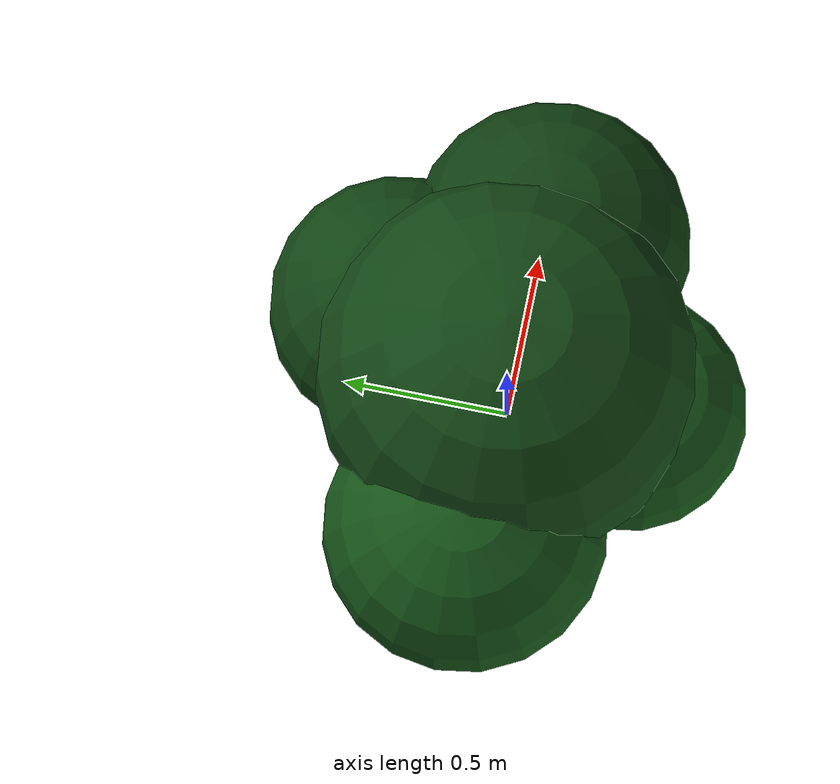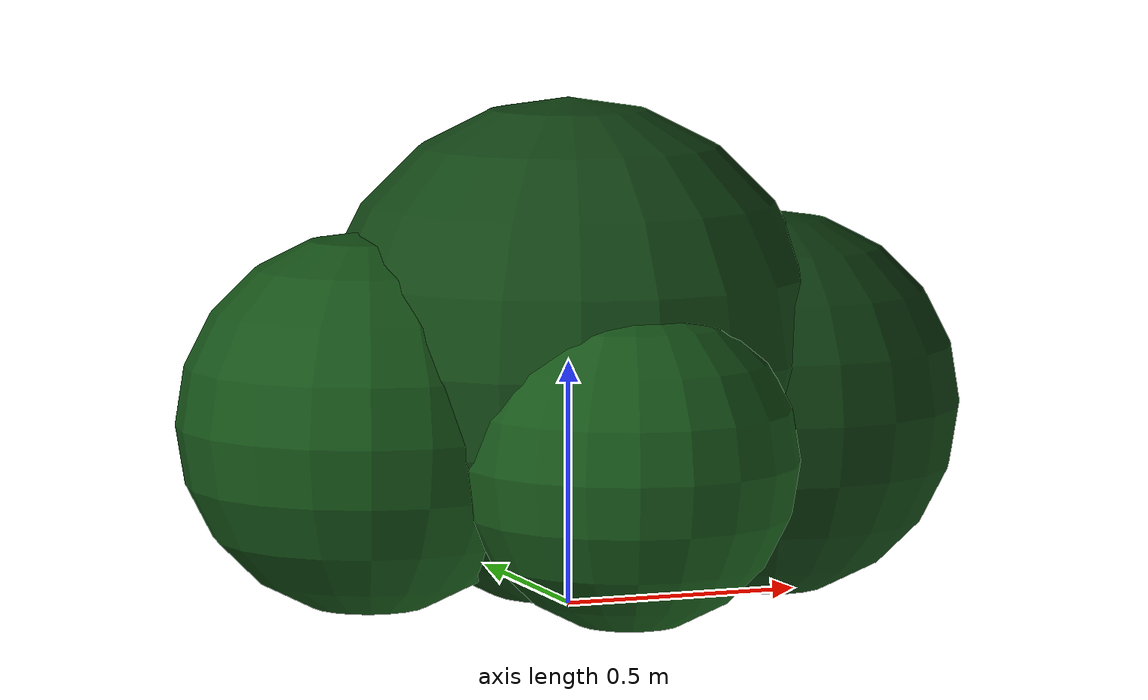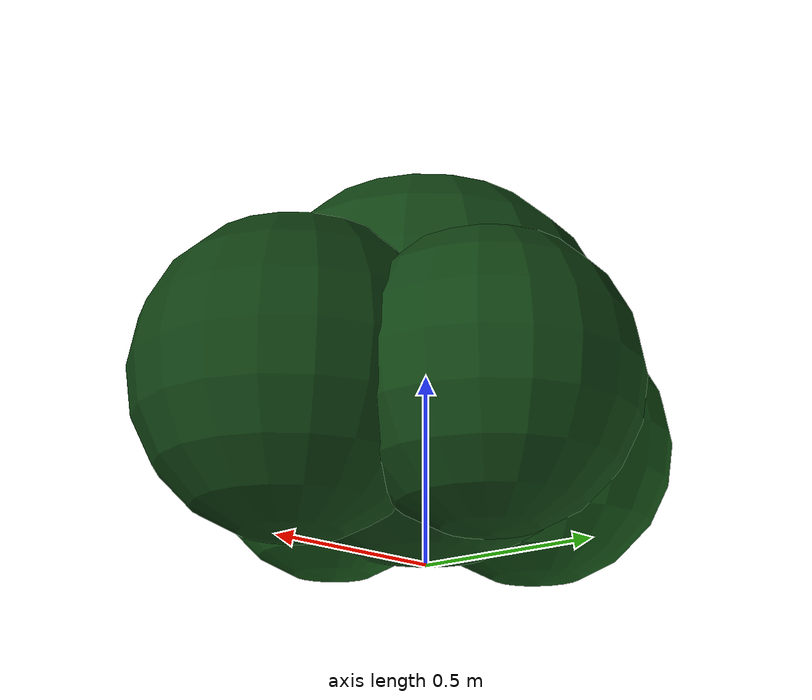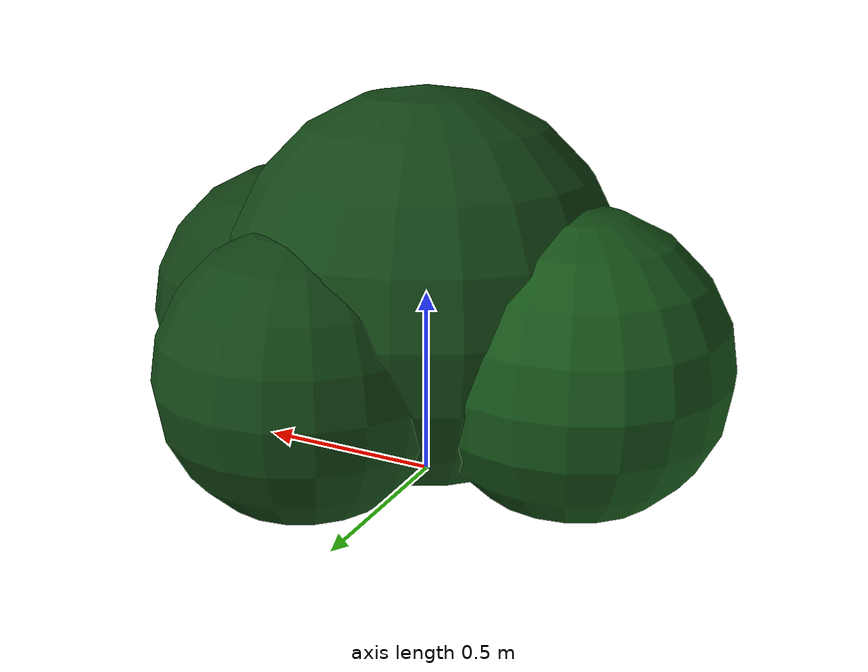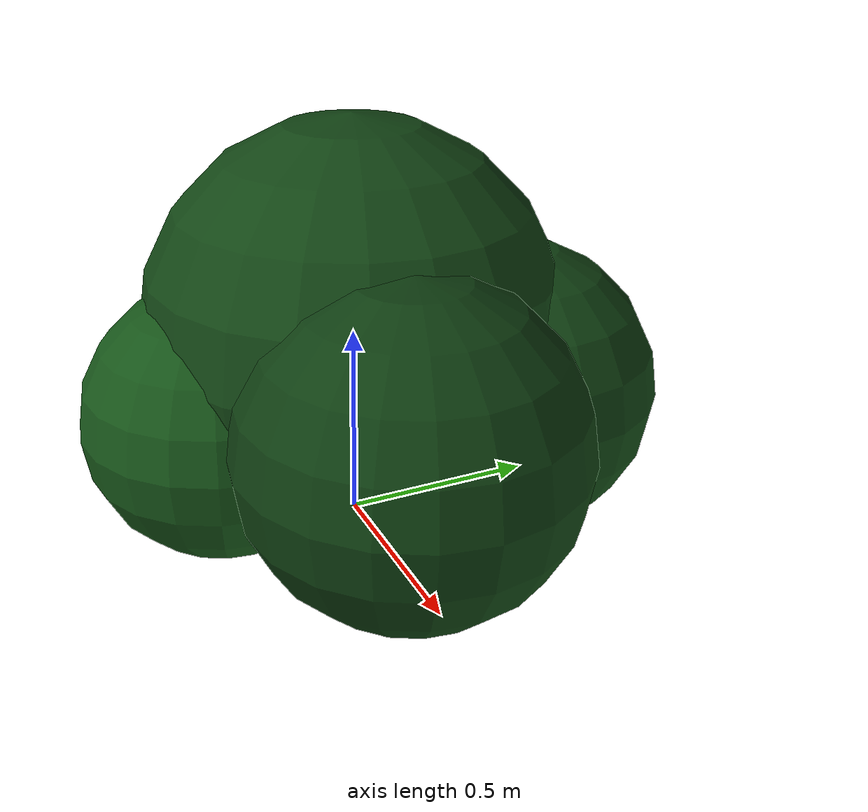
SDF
<?xml version="1.0"?>
<sdf version="1.9">
  <model name="surf_shrub">
    <static>true</static>
    <link name="shrub">
      <collision name="center_collision">
        <pose>0 0 0.52 0 0 0</pose>
        <geometry><sphere><radius>0.52</radius></sphere></geometry>
      </collision>
      <collision name="left_collision">
        <pose>-0.42 0.03 0.39 0 0 0</pose>
        <geometry><sphere><radius>0.39</radius></sphere></geometry>
      </collision>
      <collision name="right_collision">
        <pose>0.42 -0.04 0.40 0 0 0</pose>
        <geometry><sphere><radius>0.40</radius></sphere></geometry>
      </collision>
      <collision name="front_collision">
        <pose>0 -0.34 0.34 0 0 0</pose>
        <geometry><sphere><radius>0.34</radius></sphere></geometry>
      </collision>

      <visual name="center_foliage">
        <pose>0 0 0.52 0 0 0</pose>
        <geometry><sphere><radius>0.52</radius></sphere></geometry>
        <material>
          <ambient>0.045 0.18 0.055 1</ambient>
          <diffuse>0.075 0.28 0.085 1</diffuse>
          <specular>0.015 0.025 0.015 1</specular>
        </material>
      </visual>
      <visual name="left_foliage">
        <pose>-0.42 0.03 0.39 0 0 0</pose>
        <geometry><sphere><radius>0.39</radius></sphere></geometry>
        <material>
          <ambient>0.055 0.22 0.065 1</ambient>
          <diffuse>0.085 0.33 0.095 1</diffuse>
          <specular>0.015 0.025 0.015 1</specular>
        </material>
      </visual>
      <visual name="right_foliage">
        <pose>0.42 -0.04 0.40 0 0 0</pose>
        <geometry><sphere><radius>0.40</radius></sphere></geometry>
        <material>
          <ambient>0.035 0.16 0.045 1</ambient>
          <diffuse>0.060 0.25 0.070 1</diffuse>
          <specular>0.015 0.025 0.015 1</specular>
        </material>
      </visual>
      <visual name="front_foliage">
        <pose>0 -0.34 0.34 0 0 0</pose>
        <geometry><sphere><radius>0.34</radius></sphere></geometry>
        <material>
          <ambient>0.060 0.23 0.070 1</ambient>
          <diffuse>0.090 0.34 0.100 1</diffuse>
          <specular>0.015 0.025 0.015 1</specular>
        </material>
      </visual>
      <visual name="rear_foliage">
        <pose>0.16 0.34 0.37 0 0 0</pose>
        <geometry><sphere><radius>0.37</radius></sphere></geometry>
        <material>
          <ambient>0.040 0.17 0.050 1</ambient>
          <diffuse>0.068 0.27 0.078 1</diffuse>
          <specular>0.015 0.025 0.015 1</specular>
        </material>
      </visual>
    </link>
  </model>
</sdf>
